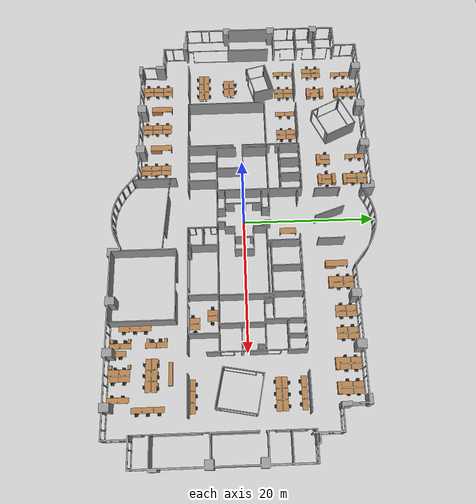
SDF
<?xml version="1.0"?>
<sdf version="1.4">

  <world name="default">

    <include>
      <uri>model://ground_plane</uri>
    </include>
    <include>
      <uri>model://sun</uri>
    </include>

    <!-- Room empty -->
    <include>
     <uri>model://SYV_office_walls</uri>
    </include>

    <!-- Furniture -->
    <include>
      <uri>model://SYV_office_desks</uri>
    </include>
    <include>
      <uri>model://SYV_office_chairs</uri>
    </include>

    <scene>
      <sky>
        <clouds>
          <speed>12</speed>
        </clouds>
      </sky>
    </scene>

  </world>
</sdf>

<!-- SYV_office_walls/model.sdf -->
<sdf version="1.6">

 <model name="SYV_office_walls">
   <link name="link_SYV_office_walls">
     <pose frame=''>0 0 0 0 0 0</pose>
     <gravity>0</gravity>
     <self_collide>0</self_collide>
     <kinematic>0</kinematic>
     <visual name="visual">
       <pose frame=''>0 0 0 0 0 0</pose>
       <meta>
        <layer>1</layer>
       </meta>
       <geometry>
         <mesh><uri>model://SYV_office_walls/meshes/walls.dae</uri></mesh>
       </geometry>
       <material>
        <lighting>1</lighting>
        <script>
          <uri>file://media/materials/scripts/gazebo.material</uri>
          <name>Gazebo/Grey</name>
        </script>
       </material>
       <cast_shadows>1</cast_shadows>
       <transparency>0</transparency>
      </visual>
      <collision name="collision">
       <laser_retro>1.0</laser_retro>
       <max_contacts>10</max_contacts>
       <pose frame=''>0 0 0 0 0 0</pose>
       <geometry>
           <mesh>
             <uri>model://SYV_office_walls/meshes/walls.dae</uri>
           </mesh>
       </geometry>
      </collision>
   </link>
   <static>1</static>
 </model>
</sdf>

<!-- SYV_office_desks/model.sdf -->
<sdf version="1.6">

 <model name="SYV_office_desks">
   <link name="link_SYV_office_desks">
     <pose frame=''>0 0 0 0 0 0</pose>
     <gravity>0</gravity>
     <self_collide>0</self_collide>
     <kinematic>0</kinematic>
     <visual name="visual">
       <pose frame=''>0 0 0 0 0 0</pose>
       <meta>
        <layer>1</layer>
       </meta>
       <geometry>
         <mesh><uri>model://SYV_office_desks/meshes/woodfurn.dae</uri></mesh>
       </geometry>
       <material>
        <lighting>1</lighting>
        <script>
          <uri>file://media/materials/scripts/gazebo.material</uri>
          <name>Gazebo/Wood</name>
        </script>
       </material>
       <cast_shadows>1</cast_shadows>
       <transparency>0</transparency>
      </visual>
      <collision name="collision">
       <laser_retro>1.0</laser_retro>
       <max_contacts>10</max_contacts>
       <pose frame=''>0 0 0 0 0 0</pose>
       <geometry>
           <mesh>
             <uri>model://SYV_office_desks/meshes/woodfurn.dae</uri>
           </mesh>
       </geometry>
      </collision>
   </link>
   <static>1</static>
 </model>
</sdf>

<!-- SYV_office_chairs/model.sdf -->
<sdf version="1.6">

 <model name="SYV_office_chairs">
   <link name="link_SYV_office_chairs">
     <pose frame=''>0 0 0 0 0 0</pose>
     <gravity>0</gravity>
     <self_collide>0</self_collide>
     <kinematic>0</kinematic>
     <visual name="visual">
       <pose frame=''>0 0 0 0 0 0</pose>
       <meta>
        <layer>1</layer>
       </meta>
       <geometry>
         <mesh><uri>model://SYV_office_chairs/meshes/chair.dae</uri></mesh>
       </geometry>
       <material>
        <lighting>1</lighting>
        <script>
          <uri>file://media/materials/scripts/gazebo.material</uri>
          <name>Gazebo/Black</name>
        </script>
       </material>
       <cast_shadows>1</cast_shadows>
       <transparency>0</transparency>
      </visual>
      <collision name="collision">
       <laser_retro>1.0</laser_retro>
       <max_contacts>10</max_contacts>
       <pose frame=''>0 0 0 0 0 0</pose>
       <geometry>
           <mesh>
             <uri>model://SYV_office_chairs/meshes/chair.dae</uri>
           </mesh>
       </geometry>
      </collision>
   </link>
   <static>1</static>
 </model>
</sdf>
